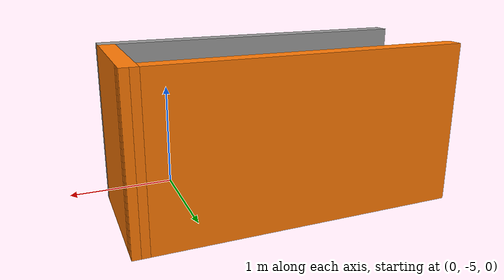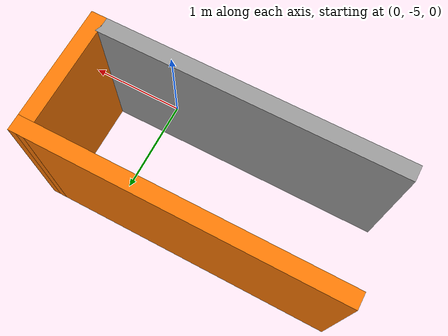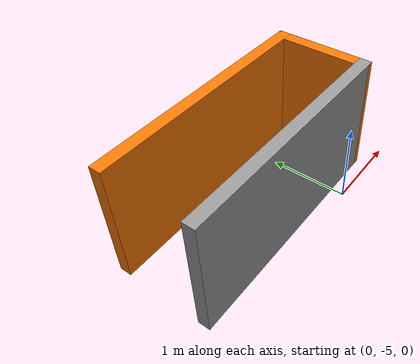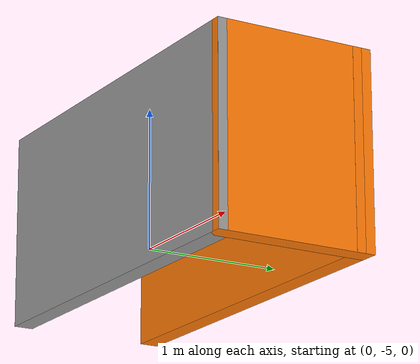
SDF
<?xml version='1.0'?>
<sdf version='1.7'>
  <model name='robot_docker'>
    <pose>-0.845 -2.42763 0 0 -0 0</pose>
    <link name='Wall_5'>
      <collision name='Wall_5_Collision'>
        <geometry>
          <box>
            <size>3 0.15 1.5</size>
          </box>
        </geometry>
        <pose>0 0 0.75 0 -0 0</pose>
      </collision>
      <visual name='Wall_5_Visual'>
        <pose>0 0 0.75 0 -0 0</pose>
        <geometry>
          <box>
            <size>3 0.15 1.5</size>
          </box>
        </geometry>
        <material>
          <script>
            <uri>file://media/materials/scripts/gazebo.material</uri>
            <name>Gazebo/Grey</name>
          </script>
          <ambient>1 1 1 1</ambient>
        </material>
        <meta>
          <layer>0</layer>
        </meta>
      </visual>
      <pose>-0 -2.34737 0 0 -0 0.003509</pose>
    </link>
    <link name='Wall_6'>
      <collision name='Wall_6_Collision'>
        <geometry>
          <box>
            <size>1.25 0.15 1.5</size>
          </box>
        </geometry>
        <pose>0 0 0.75 0 -0 0</pose>
      </collision>
      <visual name='Wall_6_Visual'>
        <pose>0 0 0.75 0 -0 0</pose>
        <geometry>
          <box>
            <size>1.25 0.15 1.5</size>
          </box>
        </geometry>
        <material>
          <script>
            <uri>file://media/materials/scripts/gazebo.material</uri>
            <name>Gazebo/Grey</name>
          </script>
          <ambient>0.996078 0.47451 0.0196078 1</ambient>
        </material>
        <meta>
          <layer>0</layer>
        </meta>
      </visual>
      <pose>1.425 -1.79237 0 0 -0 1.5708</pose>
    </link>
    <link name='Wall_7'>
      <collision name='Wall_7_Collision'>
        <geometry>
          <box>
            <size>3 0.15 1.5</size>
          </box>
        </geometry>
        <pose>0 0 0.75 0 -0 0</pose>
      </collision>
      <visual name='Wall_7_Visual'>
        <pose>0 0 0.75 0 -0 0</pose>
        <geometry>
          <box>
            <size>3 0.15 1.5</size>
          </box>
        </geometry>
        <material>
          <script>
            <uri>file://media/materials/scripts/gazebo.material</uri>
            <name>Gazebo/Grey</name>
          </script>
          <ambient>0.996078 0.47451 0.0196078 1</ambient>
        </material>
        <meta>
          <layer>0</layer>
        </meta>
      </visual>
      <pose>-0 -1.24737 0 0 -0 -3.13808</pose>
    </link>
    <static>1</static>
  </model>
</sdf>
